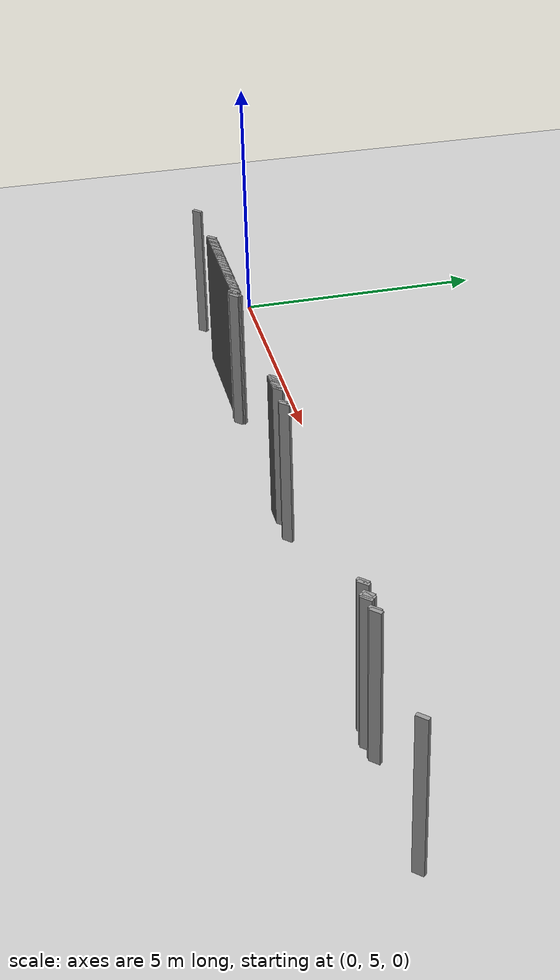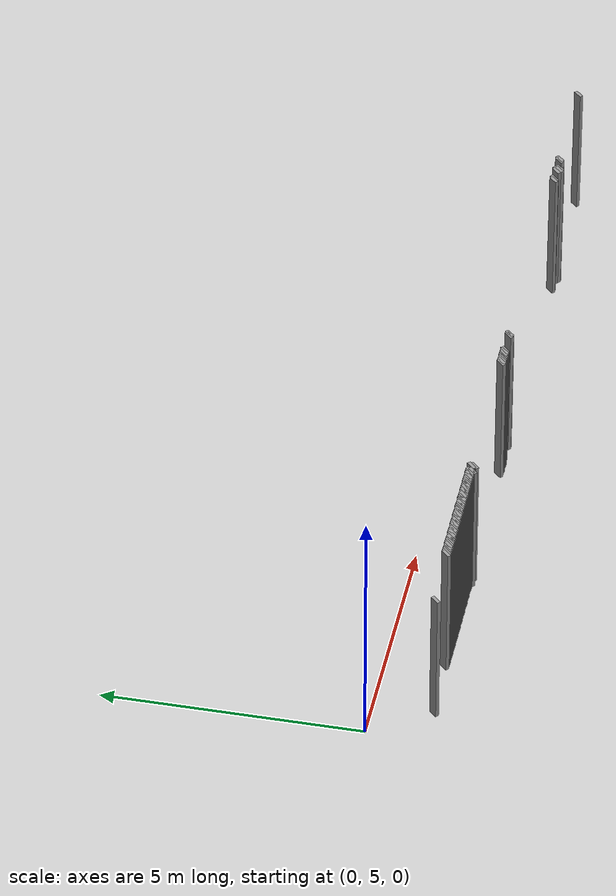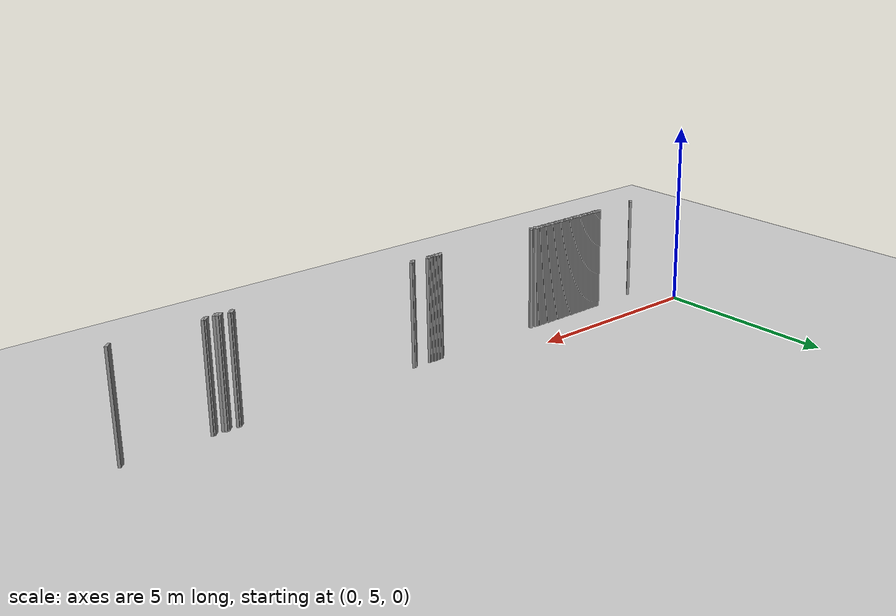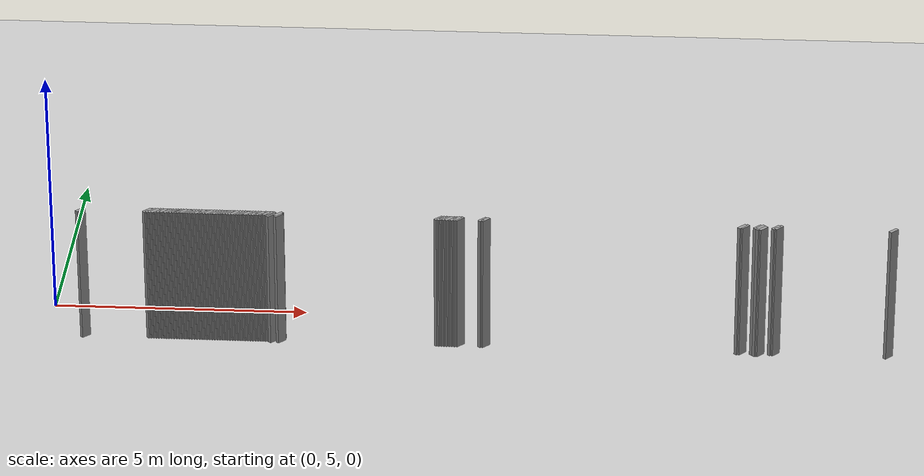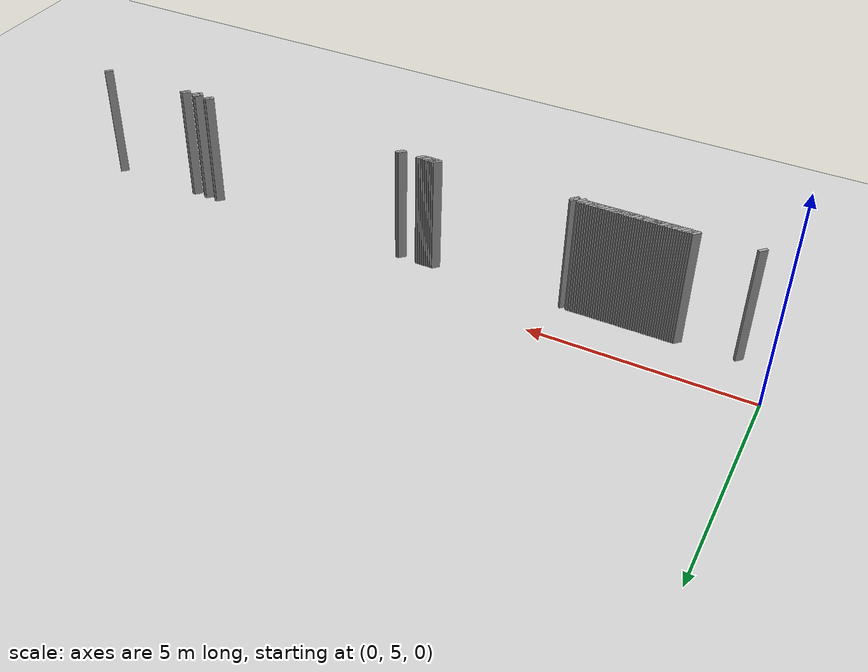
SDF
<sdf version="1.5">
 <world name="default">
  <include><uri>model://ground_plane</uri></include>
  <include><uri>model://sun</uri></include>
  <model name="grey_wall_2221">
   <static>1</static>
   <link name="link">
    <pose>2.0500000000000003 3.9000000000000004  1.4 0 0 -0.7853981633974483</pose>
    <collision name="collision">
     <geometry><box><size>0.0707106781186545 .2  2.8</size></box></geometry>
    </collision>
    <visual name="visual">
     <cast_shadows>0</cast_shadows>
     <geometry><box><size>0.0707106781186545 .2  2.8</size></box></geometry>
     <material>
      <script>
       <uri>model://grey_wall/materials/scripts</uri>
       <uri>model://grey_wall/materials/textures</uri>
       <name>vrc/grey_wall</name>
      </script>
     </material>
    </visual>
   </link>
  </model>
  <model name="grey_wall_2222">
   <static>1</static>
   <link name="link">
    <pose>2.1 3.9000000000000004  1.4 0 0 -0.7853981633974483</pose>
    <collision name="collision">
     <geometry><box><size>0.0707106781186545 .2  2.8</size></box></geometry>
    </collision>
    <visual name="visual">
     <cast_shadows>0</cast_shadows>
     <geometry><box><size>0.0707106781186545 .2  2.8</size></box></geometry>
     <material>
      <script>
       <uri>model://grey_wall/materials/scripts</uri>
       <uri>model://grey_wall/materials/textures</uri>
       <name>vrc/grey_wall</name>
      </script>
     </material>
    </visual>
   </link>
  </model>
  <model name="grey_wall_2223">
   <static>1</static>
   <link name="link">
    <pose>2.15 3.9000000000000004  1.4 0 0 -0.7853981633974483</pose>
    <collision name="collision">
     <geometry><box><size>0.0707106781186545 .2  2.8</size></box></geometry>
    </collision>
    <visual name="visual">
     <cast_shadows>0</cast_shadows>
     <geometry><box><size>0.0707106781186545 .2  2.8</size></box></geometry>
     <material>
      <script>
       <uri>model://grey_wall/materials/scripts</uri>
       <uri>model://grey_wall/materials/textures</uri>
       <name>vrc/grey_wall</name>
      </script>
     </material>
    </visual>
   </link>
  </model>
  <model name="grey_wall_2224">
   <static>1</static>
   <link name="link">
    <pose>2.2 3.9000000000000004  1.4 0 0 -0.7853981633974483</pose>
    <collision name="collision">
     <geometry><box><size>0.0707106781186545 .2  2.8</size></box></geometry>
    </collision>
    <visual name="visual">
     <cast_shadows>0</cast_shadows>
     <geometry><box><size>0.0707106781186545 .2  2.8</size></box></geometry>
     <material>
      <script>
       <uri>model://grey_wall/materials/scripts</uri>
       <uri>model://grey_wall/materials/textures</uri>
       <name>vrc/grey_wall</name>
      </script>
     </material>
    </visual>
   </link>
  </model>
  <model name="grey_wall_2225">
   <static>1</static>
   <link name="link">
    <pose>2.25 3.9000000000000004  1.4 0 0 -0.7853981633974483</pose>
    <collision name="collision">
     <geometry><box><size>0.0707106781186545 .2  2.8</size></box></geometry>
    </collision>
    <visual name="visual">
     <cast_shadows>0</cast_shadows>
     <geometry><box><size>0.0707106781186545 .2  2.8</size></box></geometry>
     <material>
      <script>
       <uri>model://grey_wall/materials/scripts</uri>
       <uri>model://grey_wall/materials/textures</uri>
       <name>vrc/grey_wall</name>
      </script>
     </material>
    </visual>
   </link>
  </model>
  <model name="grey_wall_2226">
   <static>1</static>
   <link name="link">
    <pose>2.3000000000000003 3.9000000000000004  1.4 0 0 -0.7853981633974483</pose>
    <collision name="collision">
     <geometry><box><size>0.0707106781186545 .2  2.8</size></box></geometry>
    </collision>
    <visual name="visual">
     <cast_shadows>0</cast_shadows>
     <geometry><box><size>0.0707106781186545 .2  2.8</size></box></geometry>
     <material>
      <script>
       <uri>model://grey_wall/materials/scripts</uri>
       <uri>model://grey_wall/materials/textures</uri>
       <name>vrc/grey_wall</name>
      </script>
     </material>
    </visual>
   </link>
  </model>
  <model name="grey_wall_2227">
   <static>1</static>
   <link name="link">
    <pose>2.35 3.9000000000000004  1.4 0 0 -0.7853981633974483</pose>
    <collision name="collision">
     <geometry><box><size>0.0707106781186545 .2  2.8</size></box></geometry>
    </collision>
    <visual name="visual">
     <cast_shadows>0</cast_shadows>
     <geometry><box><size>0.0707106781186545 .2  2.8</size></box></geometry>
     <material>
      <script>
       <uri>model://grey_wall/materials/scripts</uri>
       <uri>model://grey_wall/materials/textures</uri>
       <name>vrc/grey_wall</name>
      </script>
     </material>
    </visual>
   </link>
  </model>
  <model name="grey_wall_2228">
   <static>1</static>
   <link name="link">
    <pose>2.4000000000000004 3.9000000000000004  1.4 0 0 -0.7853981633974483</pose>
    <collision name="collision">
     <geometry><box><size>0.0707106781186545 .2  2.8</size></box></geometry>
    </collision>
    <visual name="visual">
     <cast_shadows>0</cast_shadows>
     <geometry><box><size>0.0707106781186545 .2  2.8</size></box></geometry>
     <material>
      <script>
       <uri>model://grey_wall/materials/scripts</uri>
       <uri>model://grey_wall/materials/textures</uri>
       <name>vrc/grey_wall</name>
      </script>
     </material>
    </visual>
   </link>
  </model>
  <model name="grey_wall_2229">
   <static>1</static>
   <link name="link">
    <pose>2.45 3.9000000000000004  1.4 0 0 -0.7853981633974483</pose>
    <collision name="collision">
     <geometry><box><size>0.0707106781186545 .2  2.8</size></box></geometry>
    </collision>
    <visual name="visual">
     <cast_shadows>0</cast_shadows>
     <geometry><box><size>0.0707106781186545 .2  2.8</size></box></geometry>
     <material>
      <script>
       <uri>model://grey_wall/materials/scripts</uri>
       <uri>model://grey_wall/materials/textures</uri>
       <name>vrc/grey_wall</name>
      </script>
     </material>
    </visual>
   </link>
  </model>
  <model name="grey_wall_2230">
   <static>1</static>
   <link name="link">
    <pose>2.5 3.9000000000000004  1.4 0 0 -0.7853981633974483</pose>
    <collision name="collision">
     <geometry><box><size>0.0707106781186545 .2  2.8</size></box></geometry>
    </collision>
    <visual name="visual">
     <cast_shadows>0</cast_shadows>
     <geometry><box><size>0.0707106781186545 .2  2.8</size></box></geometry>
     <material>
      <script>
       <uri>model://grey_wall/materials/scripts</uri>
       <uri>model://grey_wall/materials/textures</uri>
       <name>vrc/grey_wall</name>
      </script>
     </material>
    </visual>
   </link>
  </model>
  <model name="grey_wall_2231">
   <static>1</static>
   <link name="link">
    <pose>2.5500000000000003 3.9000000000000004  1.4 0 0 -0.7853981633974483</pose>
    <collision name="collision">
     <geometry><box><size>0.0707106781186545 .2  2.8</size></box></geometry>
    </collision>
    <visual name="visual">
     <cast_shadows>0</cast_shadows>
     <geometry><box><size>0.0707106781186545 .2  2.8</size></box></geometry>
     <material>
      <script>
       <uri>model://grey_wall/materials/scripts</uri>
       <uri>model://grey_wall/materials/textures</uri>
       <name>vrc/grey_wall</name>
      </script>
     </material>
    </visual>
   </link>
  </model>
  <model name="grey_wall_2232">
   <static>1</static>
   <link name="link">
    <pose>2.6 3.9000000000000004  1.4 0 0 -0.7853981633974483</pose>
    <collision name="collision">
     <geometry><box><size>0.0707106781186545 .2  2.8</size></box></geometry>
    </collision>
    <visual name="visual">
     <cast_shadows>0</cast_shadows>
     <geometry><box><size>0.0707106781186545 .2  2.8</size></box></geometry>
     <material>
      <script>
       <uri>model://grey_wall/materials/scripts</uri>
       <uri>model://grey_wall/materials/textures</uri>
       <name>vrc/grey_wall</name>
      </script>
     </material>
    </visual>
   </link>
  </model>
  <model name="grey_wall_2233">
   <static>1</static>
   <link name="link">
    <pose>2.6500000000000004 3.9000000000000004  1.4 0 0 -0.7853981633974483</pose>
    <collision name="collision">
     <geometry><box><size>0.0707106781186545 .2  2.8</size></box></geometry>
    </collision>
    <visual name="visual">
     <cast_shadows>0</cast_shadows>
     <geometry><box><size>0.0707106781186545 .2  2.8</size></box></geometry>
     <material>
      <script>
       <uri>model://grey_wall/materials/scripts</uri>
       <uri>model://grey_wall/materials/textures</uri>
       <name>vrc/grey_wall</name>
      </script>
     </material>
    </visual>
   </link>
  </model>
  <model name="grey_wall_2234">
   <static>1</static>
   <link name="link">
    <pose>2.7 3.9000000000000004  1.4 0 0 -0.7853981633974483</pose>
    <collision name="collision">
     <geometry><box><size>0.0707106781186545 .2  2.8</size></box></geometry>
    </collision>
    <visual name="visual">
     <cast_shadows>0</cast_shadows>
     <geometry><box><size>0.0707106781186545 .2  2.8</size></box></geometry>
     <material>
      <script>
       <uri>model://grey_wall/materials/scripts</uri>
       <uri>model://grey_wall/materials/textures</uri>
       <name>vrc/grey_wall</name>
      </script>
     </material>
    </visual>
   </link>
  </model>
  <model name="grey_wall_2235">
   <static>1</static>
   <link name="link">
    <pose>2.75 3.9000000000000004  1.4 0 0 -0.7853981633974483</pose>
    <collision name="collision">
     <geometry><box><size>0.0707106781186545 .2  2.8</size></box></geometry>
    </collision>
    <visual name="visual">
     <cast_shadows>0</cast_shadows>
     <geometry><box><size>0.0707106781186545 .2  2.8</size></box></geometry>
     <material>
      <script>
       <uri>model://grey_wall/materials/scripts</uri>
       <uri>model://grey_wall/materials/textures</uri>
       <name>vrc/grey_wall</name>
      </script>
     </material>
    </visual>
   </link>
  </model>
  <model name="grey_wall_2236">
   <static>1</static>
   <link name="link">
    <pose>2.8000000000000003 3.9000000000000004  1.4 0 0 -0.7853981633974483</pose>
    <collision name="collision">
     <geometry><box><size>0.0707106781186545 .2  2.8</size></box></geometry>
    </collision>
    <visual name="visual">
     <cast_shadows>0</cast_shadows>
     <geometry><box><size>0.0707106781186545 .2  2.8</size></box></geometry>
     <material>
      <script>
       <uri>model://grey_wall/materials/scripts</uri>
       <uri>model://grey_wall/materials/textures</uri>
       <name>vrc/grey_wall</name>
      </script>
     </material>
    </visual>
   </link>
  </model>
  <model name="grey_wall_2237">
   <static>1</static>
   <link name="link">
    <pose>2.85 3.9000000000000004  1.4 0 0 -0.7853981633974483</pose>
    <collision name="collision">
     <geometry><box><size>0.0707106781186545 .2  2.8</size></box></geometry>
    </collision>
    <visual name="visual">
     <cast_shadows>0</cast_shadows>
     <geometry><box><size>0.0707106781186545 .2  2.8</size></box></geometry>
     <material>
      <script>
       <uri>model://grey_wall/materials/scripts</uri>
       <uri>model://grey_wall/materials/textures</uri>
       <name>vrc/grey_wall</name>
      </script>
     </material>
    </visual>
   </link>
  </model>
  <model name="grey_wall_2238">
   <static>1</static>
   <link name="link">
    <pose>2.9000000000000004 3.9000000000000004  1.4 0 0 -0.7853981633974483</pose>
    <collision name="collision">
     <geometry><box><size>0.0707106781186545 .2  2.8</size></box></geometry>
    </collision>
    <visual name="visual">
     <cast_shadows>0</cast_shadows>
     <geometry><box><size>0.0707106781186545 .2  2.8</size></box></geometry>
     <material>
      <script>
       <uri>model://grey_wall/materials/scripts</uri>
       <uri>model://grey_wall/materials/textures</uri>
       <name>vrc/grey_wall</name>
      </script>
     </material>
    </visual>
   </link>
  </model>
  <model name="grey_wall_2239">
   <static>1</static>
   <link name="link">
    <pose>2.95 3.9000000000000004  1.4 0 0 -0.7853981633974483</pose>
    <collision name="collision">
     <geometry><box><size>0.0707106781186545 .2  2.8</size></box></geometry>
    </collision>
    <visual name="visual">
     <cast_shadows>0</cast_shadows>
     <geometry><box><size>0.0707106781186545 .2  2.8</size></box></geometry>
     <material>
      <script>
       <uri>model://grey_wall/materials/scripts</uri>
       <uri>model://grey_wall/materials/textures</uri>
       <name>vrc/grey_wall</name>
      </script>
     </material>
    </visual>
   </link>
  </model>
  <model name="grey_wall_2240">
   <static>1</static>
   <link name="link">
    <pose>3.0 3.9000000000000004  1.4 0 0 -0.7853981633974483</pose>
    <collision name="collision">
     <geometry><box><size>0.0707106781186545 .2  2.8</size></box></geometry>
    </collision>
    <visual name="visual">
     <cast_shadows>0</cast_shadows>
     <geometry><box><size>0.0707106781186545 .2  2.8</size></box></geometry>
     <material>
      <script>
       <uri>model://grey_wall/materials/scripts</uri>
       <uri>model://grey_wall/materials/textures</uri>
       <name>vrc/grey_wall</name>
      </script>
     </material>
    </visual>
   </link>
  </model>
  <model name="grey_wall_2241">
   <static>1</static>
   <link name="link">
    <pose>3.0500000000000003 3.9000000000000004  1.4 0 0 -0.7853981633974483</pose>
    <collision name="collision">
     <geometry><box><size>0.0707106781186545 .2  2.8</size></box></geometry>
    </collision>
    <visual name="visual">
     <cast_shadows>0</cast_shadows>
     <geometry><box><size>0.0707106781186545 .2  2.8</size></box></geometry>
     <material>
      <script>
       <uri>model://grey_wall/materials/scripts</uri>
       <uri>model://grey_wall/materials/textures</uri>
       <name>vrc/grey_wall</name>
      </script>
     </material>
    </visual>
   </link>
  </model>
  <model name="grey_wall_2242">
   <static>1</static>
   <link name="link">
    <pose>3.1 3.9000000000000004  1.4 0 0 -0.7853981633974483</pose>
    <collision name="collision">
     <geometry><box><size>0.0707106781186545 .2  2.8</size></box></geometry>
    </collision>
    <visual name="visual">
     <cast_shadows>0</cast_shadows>
     <geometry><box><size>0.0707106781186545 .2  2.8</size></box></geometry>
     <material>
      <script>
       <uri>model://grey_wall/materials/scripts</uri>
       <uri>model://grey_wall/materials/textures</uri>
       <name>vrc/grey_wall</name>
      </script>
     </material>
    </visual>
   </link>
  </model>
  <model name="grey_wall_2243">
   <static>1</static>
   <link name="link">
    <pose>3.1500000000000004 3.9000000000000004  1.4 0 0 -0.7853981633974483</pose>
    <collision name="collision">
     <geometry><box><size>0.0707106781186545 .2  2.8</size></box></geometry>
    </collision>
    <visual name="visual">
     <cast_shadows>0</cast_shadows>
     <geometry><box><size>0.0707106781186545 .2  2.8</size></box></geometry>
     <material>
      <script>
       <uri>model://grey_wall/materials/scripts</uri>
       <uri>model://grey_wall/materials/textures</uri>
       <name>vrc/grey_wall</name>
      </script>
     </material>
    </visual>
   </link>
  </model>
  <model name="grey_wall_2244">
   <static>1</static>
   <link name="link">
    <pose>3.2 3.9000000000000004  1.4 0 0 -0.7853981633974483</pose>
    <collision name="collision">
     <geometry><box><size>0.0707106781186545 .2  2.8</size></box></geometry>
    </collision>
    <visual name="visual">
     <cast_shadows>0</cast_shadows>
     <geometry><box><size>0.0707106781186545 .2  2.8</size></box></geometry>
     <material>
      <script>
       <uri>model://grey_wall/materials/scripts</uri>
       <uri>model://grey_wall/materials/textures</uri>
       <name>vrc/grey_wall</name>
      </script>
     </material>
    </visual>
   </link>
  </model>
  <model name="grey_wall_2245">
   <static>1</static>
   <link name="link">
    <pose>3.25 3.9000000000000004  1.4 0 0 -0.7853981633974483</pose>
    <collision name="collision">
     <geometry><box><size>0.0707106781186545 .2  2.8</size></box></geometry>
    </collision>
    <visual name="visual">
     <cast_shadows>0</cast_shadows>
     <geometry><box><size>0.0707106781186545 .2  2.8</size></box></geometry>
     <material>
      <script>
       <uri>model://grey_wall/materials/scripts</uri>
       <uri>model://grey_wall/materials/textures</uri>
       <name>vrc/grey_wall</name>
      </script>
     </material>
    </visual>
   </link>
  </model>
  <model name="grey_wall_2246">
   <static>1</static>
   <link name="link">
    <pose>3.3000000000000003 3.9000000000000004  1.4 0 0 -0.7853981633974483</pose>
    <collision name="collision">
     <geometry><box><size>0.0707106781186545 .2  2.8</size></box></geometry>
    </collision>
    <visual name="visual">
     <cast_shadows>0</cast_shadows>
     <geometry><box><size>0.0707106781186545 .2  2.8</size></box></geometry>
     <material>
      <script>
       <uri>model://grey_wall/materials/scripts</uri>
       <uri>model://grey_wall/materials/textures</uri>
       <name>vrc/grey_wall</name>
      </script>
     </material>
    </visual>
   </link>
  </model>
  <model name="grey_wall_2247">
   <static>1</static>
   <link name="link">
    <pose>3.35 3.9000000000000004  1.4 0 0 -0.7853981633974483</pose>
    <collision name="collision">
     <geometry><box><size>0.0707106781186545 .2  2.8</size></box></geometry>
    </collision>
    <visual name="visual">
     <cast_shadows>0</cast_shadows>
     <geometry><box><size>0.0707106781186545 .2  2.8</size></box></geometry>
     <material>
      <script>
       <uri>model://grey_wall/materials/scripts</uri>
       <uri>model://grey_wall/materials/textures</uri>
       <name>vrc/grey_wall</name>
      </script>
     </material>
    </visual>
   </link>
  </model>
  <model name="grey_wall_2248">
   <static>1</static>
   <link name="link">
    <pose>3.4000000000000004 3.9000000000000004  1.4 0 0 -0.7853981633974483</pose>
    <collision name="collision">
     <geometry><box><size>0.0707106781186545 .2  2.8</size></box></geometry>
    </collision>
    <visual name="visual">
     <cast_shadows>0</cast_shadows>
     <geometry><box><size>0.0707106781186545 .2  2.8</size></box></geometry>
     <material>
      <script>
       <uri>model://grey_wall/materials/scripts</uri>
       <uri>model://grey_wall/materials/textures</uri>
       <name>vrc/grey_wall</name>
      </script>
     </material>
    </visual>
   </link>
  </model>
  <model name="grey_wall_2249">
   <static>1</static>
   <link name="link">
    <pose>3.45 3.9000000000000004  1.4 0 0 -0.7853981633974483</pose>
    <collision name="collision">
     <geometry><box><size>0.0707106781186545 .2  2.8</size></box></geometry>
    </collision>
    <visual name="visual">
     <cast_shadows>0</cast_shadows>
     <geometry><box><size>0.0707106781186545 .2  2.8</size></box></geometry>
     <material>
      <script>
       <uri>model://grey_wall/materials/scripts</uri>
       <uri>model://grey_wall/materials/textures</uri>
       <name>vrc/grey_wall</name>
      </script>
     </material>
    </visual>
   </link>
  </model>
  <model name="grey_wall_2250">
   <static>1</static>
   <link name="link">
    <pose>3.5 3.9000000000000004  1.4 0 0 -0.7853981633974483</pose>
    <collision name="collision">
     <geometry><box><size>0.0707106781186545 .2  2.8</size></box></geometry>
    </collision>
    <visual name="visual">
     <cast_shadows>0</cast_shadows>
     <geometry><box><size>0.0707106781186545 .2  2.8</size></box></geometry>
     <material>
      <script>
       <uri>model://grey_wall/materials/scripts</uri>
       <uri>model://grey_wall/materials/textures</uri>
       <name>vrc/grey_wall</name>
      </script>
     </material>
    </visual>
   </link>
  </model>
  <model name="grey_wall_2251">
   <static>1</static>
   <link name="link">
    <pose>3.5500000000000003 3.9000000000000004  1.4 0 0 -0.7853981633974483</pose>
    <collision name="collision">
     <geometry><box><size>0.0707106781186545 .2  2.8</size></box></geometry>
    </collision>
    <visual name="visual">
     <cast_shadows>0</cast_shadows>
     <geometry><box><size>0.0707106781186545 .2  2.8</size></box></geometry>
     <material>
      <script>
       <uri>model://grey_wall/materials/scripts</uri>
       <uri>model://grey_wall/materials/textures</uri>
       <name>vrc/grey_wall</name>
      </script>
     </material>
    </visual>
   </link>
  </model>
  <model name="grey_wall_2252">
   <static>1</static>
   <link name="link">
    <pose>3.6 3.9000000000000004  1.4 0 0 -0.7853981633974483</pose>
    <collision name="collision">
     <geometry><box><size>0.0707106781186545 .2  2.8</size></box></geometry>
    </collision>
    <visual name="visual">
     <cast_shadows>0</cast_shadows>
     <geometry><box><size>0.0707106781186545 .2  2.8</size></box></geometry>
     <material>
      <script>
       <uri>model://grey_wall/materials/scripts</uri>
       <uri>model://grey_wall/materials/textures</uri>
       <name>vrc/grey_wall</name>
      </script>
     </material>
    </visual>
   </link>
  </model>
  <model name="grey_wall_2253">
   <static>1</static>
   <link name="link">
    <pose>3.6500000000000004 3.9000000000000004  1.4 0 0 -0.7853981633974483</pose>
    <collision name="collision">
     <geometry><box><size>0.0707106781186545 .2  2.8</size></box></geometry>
    </collision>
    <visual name="visual">
     <cast_shadows>0</cast_shadows>
     <geometry><box><size>0.0707106781186545 .2  2.8</size></box></geometry>
     <material>
      <script>
       <uri>model://grey_wall/materials/scripts</uri>
       <uri>model://grey_wall/materials/textures</uri>
       <name>vrc/grey_wall</name>
      </script>
     </material>
    </visual>
   </link>
  </model>
  <model name="grey_wall_2254">
   <static>1</static>
   <link name="link">
    <pose>3.7 3.9000000000000004  1.4 0 0 -0.7853981633974483</pose>
    <collision name="collision">
     <geometry><box><size>0.0707106781186545 .2  2.8</size></box></geometry>
    </collision>
    <visual name="visual">
     <cast_shadows>0</cast_shadows>
     <geometry><box><size>0.0707106781186545 .2  2.8</size></box></geometry>
     <material>
      <script>
       <uri>model://grey_wall/materials/scripts</uri>
       <uri>model://grey_wall/materials/textures</uri>
       <name>vrc/grey_wall</name>
      </script>
     </material>
    </visual>
   </link>
  </model>
  <model name="grey_wall_2255">
   <static>1</static>
   <link name="link">
    <pose>3.75 3.9000000000000004  1.4 0 0 -0.7853981633974483</pose>
    <collision name="collision">
     <geometry><box><size>0.0707106781186545 .2  2.8</size></box></geometry>
    </collision>
    <visual name="visual">
     <cast_shadows>0</cast_shadows>
     <geometry><box><size>0.0707106781186545 .2  2.8</size></box></geometry>
     <material>
      <script>
       <uri>model://grey_wall/materials/scripts</uri>
       <uri>model://grey_wall/materials/textures</uri>
       <name>vrc/grey_wall</name>
      </script>
     </material>
    </visual>
   </link>
  </model>
  <model name="grey_wall_2256">
   <static>1</static>
   <link name="link">
    <pose>3.8000000000000003 3.9000000000000004  1.4 0 0 -0.7853981633974483</pose>
    <collision name="collision">
     <geometry><box><size>0.0707106781186545 .2  2.8</size></box></geometry>
    </collision>
    <visual name="visual">
     <cast_shadows>0</cast_shadows>
     <geometry><box><size>0.0707106781186545 .2  2.8</size></box></geometry>
     <material>
      <script>
       <uri>model://grey_wall/materials/scripts</uri>
       <uri>model://grey_wall/materials/textures</uri>
       <name>vrc/grey_wall</name>
      </script>
     </material>
    </visual>
   </link>
  </model>
  <model name="grey_wall_2257">
   <static>1</static>
   <link name="link">
    <pose>3.85 3.9000000000000004  1.4 0 0 -0.7853981633974483</pose>
    <collision name="collision">
     <geometry><box><size>0.0707106781186545 .2  2.8</size></box></geometry>
    </collision>
    <visual name="visual">
     <cast_shadows>0</cast_shadows>
     <geometry><box><size>0.0707106781186545 .2  2.8</size></box></geometry>
     <material>
      <script>
       <uri>model://grey_wall/materials/scripts</uri>
       <uri>model://grey_wall/materials/textures</uri>
       <name>vrc/grey_wall</name>
      </script>
     </material>
    </visual>
   </link>
  </model>
  <model name="grey_wall_2258">
   <static>1</static>
   <link name="link">
    <pose>3.9000000000000004 3.9000000000000004  1.4 0 0 -0.7853981633974483</pose>
    <collision name="collision">
     <geometry><box><size>0.0707106781186545 .2  2.8</size></box></geometry>
    </collision>
    <visual name="visual">
     <cast_shadows>0</cast_shadows>
     <geometry><box><size>0.0707106781186545 .2  2.8</size></box></geometry>
     <material>
      <script>
       <uri>model://grey_wall/materials/scripts</uri>
       <uri>model://grey_wall/materials/textures</uri>
       <name>vrc/grey_wall</name>
      </script>
     </material>
    </visual>
   </link>
  </model>
  <model name="grey_wall_2259">
   <static>1</static>
   <link name="link">
    <pose>3.95 3.9000000000000004  1.4 0 0 -0.7853981633974483</pose>
    <collision name="collision">
     <geometry><box><size>0.0707106781186545 .2  2.8</size></box></geometry>
    </collision>
    <visual name="visual">
     <cast_shadows>0</cast_shadows>
     <geometry><box><size>0.0707106781186545 .2  2.8</size></box></geometry>
     <material>
      <script>
       <uri>model://grey_wall/materials/scripts</uri>
       <uri>model://grey_wall/materials/textures</uri>
       <name>vrc/grey_wall</name>
      </script>
     </material>
    </visual>
   </link>
  </model>
  <model name="grey_wall_2260">
   <static>1</static>
   <link name="link">
    <pose>4.0 3.9000000000000004  1.4 0 0 -0.7853981633974438</pose>
    <collision name="collision">
     <geometry><box><size>0.07071067811865482 .2  2.8</size></box></geometry>
    </collision>
    <visual name="visual">
     <cast_shadows>0</cast_shadows>
     <geometry><box><size>0.07071067811865482 .2  2.8</size></box></geometry>
     <material>
      <script>
       <uri>model://grey_wall/materials/scripts</uri>
       <uri>model://grey_wall/materials/textures</uri>
       <name>vrc/grey_wall</name>
      </script>
     </material>
    </visual>
   </link>
  </model>
  <model name="grey_wall_2261">
   <static>1</static>
   <link name="link">
    <pose>4.05 3.9000000000000004  1.4 0 0 -0.7853981633974394</pose>
    <collision name="collision">
     <geometry><box><size>0.07071067811865513 .2  2.8</size></box></geometry>
    </collision>
    <visual name="visual">
     <cast_shadows>0</cast_shadows>
     <geometry><box><size>0.07071067811865513 .2  2.8</size></box></geometry>
     <material>
      <script>
       <uri>model://grey_wall/materials/scripts</uri>
       <uri>model://grey_wall/materials/textures</uri>
       <name>vrc/grey_wall</name>
      </script>
     </material>
    </visual>
   </link>
  </model>
  <model name="grey_wall_2262">
   <static>1</static>
   <link name="link">
    <pose>4.1000000000000005 3.9000000000000004  1.4 0 0 -0.7853981633974394</pose>
    <collision name="collision">
     <geometry><box><size>0.07071067811865513 .2  2.8</size></box></geometry>
    </collision>
    <visual name="visual">
     <cast_shadows>0</cast_shadows>
     <geometry><box><size>0.07071067811865513 .2  2.8</size></box></geometry>
     <material>
      <script>
       <uri>model://grey_wall/materials/scripts</uri>
       <uri>model://grey_wall/materials/textures</uri>
       <name>vrc/grey_wall</name>
      </script>
     </material>
    </visual>
   </link>
  </model>
  <model name="grey_wall_2263">
   <static>1</static>
   <link name="link">
    <pose>4.15 3.9000000000000004  1.4 0 0 -0.7853981633974394</pose>
    <collision name="collision">
     <geometry><box><size>0.07071067811865513 .2  2.8</size></box></geometry>
    </collision>
    <visual name="visual">
     <cast_shadows>0</cast_shadows>
     <geometry><box><size>0.07071067811865513 .2  2.8</size></box></geometry>
     <material>
      <script>
       <uri>model://grey_wall/materials/scripts</uri>
       <uri>model://grey_wall/materials/textures</uri>
       <name>vrc/grey_wall</name>
      </script>
     </material>
    </visual>
   </link>
  </model>
  <model name="grey_wall_2264">
   <static>1</static>
   <link name="link">
    <pose>4.2 3.9000000000000004  1.4 0 0 -0.7853981633974394</pose>
    <collision name="collision">
     <geometry><box><size>0.07071067811865513 .2  2.8</size></box></geometry>
    </collision>
    <visual name="visual">
     <cast_shadows>0</cast_shadows>
     <geometry><box><size>0.07071067811865513 .2  2.8</size></box></geometry>
     <material>
      <script>
       <uri>model://grey_wall/materials/scripts</uri>
       <uri>model://grey_wall/materials/textures</uri>
       <name>vrc/grey_wall</name>
      </script>
     </material>
    </visual>
   </link>
  </model>
  <model name="grey_wall_2265">
   <static>1</static>
   <link name="link">
    <pose>4.25 3.9000000000000004  1.4 0 0 -0.7853981633974394</pose>
    <collision name="collision">
     <geometry><box><size>0.07071067811865513 .2  2.8</size></box></geometry>
    </collision>
    <visual name="visual">
     <cast_shadows>0</cast_shadows>
     <geometry><box><size>0.07071067811865513 .2  2.8</size></box></geometry>
     <material>
      <script>
       <uri>model://grey_wall/materials/scripts</uri>
       <uri>model://grey_wall/materials/textures</uri>
       <name>vrc/grey_wall</name>
      </script>
     </material>
    </visual>
   </link>
  </model>
  <model name="grey_wall_2266">
   <static>1</static>
   <link name="link">
    <pose>4.3 3.9000000000000004  1.4 0 0 -0.7853981633974394</pose>
    <collision name="collision">
     <geometry><box><size>0.07071067811865513 .2  2.8</size></box></geometry>
    </collision>
    <visual name="visual">
     <cast_shadows>0</cast_shadows>
     <geometry><box><size>0.07071067811865513 .2  2.8</size></box></geometry>
     <material>
      <script>
       <uri>model://grey_wall/materials/scripts</uri>
       <uri>model://grey_wall/materials/textures</uri>
       <name>vrc/grey_wall</name>
      </script>
     </material>
    </visual>
   </link>
  </model>
  <model name="grey_wall_2267">
   <static>1</static>
   <link name="link">
    <pose>4.3500000000000005 3.9000000000000004  1.4 0 0 -0.7853981633974394</pose>
    <collision name="collision">
     <geometry><box><size>0.07071067811865513 .2  2.8</size></box></geometry>
    </collision>
    <visual name="visual">
     <cast_shadows>0</cast_shadows>
     <geometry><box><size>0.07071067811865513 .2  2.8</size></box></geometry>
     <material>
      <script>
       <uri>model://grey_wall/materials/scripts</uri>
       <uri>model://grey_wall/materials/textures</uri>
       <name>vrc/grey_wall</name>
      </script>
     </material>
    </visual>
   </link>
  </model>
  <model name="grey_wall_2268">
   <static>1</static>
   <link name="link">
    <pose>4.4 3.9000000000000004  1.4 0 0 -0.7853981633974394</pose>
    <collision name="collision">
     <geometry><box><size>0.07071067811865513 .2  2.8</size></box></geometry>
    </collision>
    <visual name="visual">
     <cast_shadows>0</cast_shadows>
     <geometry><box><size>0.07071067811865513 .2  2.8</size></box></geometry>
     <material>
      <script>
       <uri>model://grey_wall/materials/scripts</uri>
       <uri>model://grey_wall/materials/textures</uri>
       <name>vrc/grey_wall</name>
      </script>
     </material>
    </visual>
   </link>
  </model>
  <model name="grey_wall_2269">
   <static>1</static>
   <link name="link">
    <pose>4.45 3.9000000000000004  1.4 0 0 -0.7853981633974394</pose>
    <collision name="collision">
     <geometry><box><size>0.07071067811865513 .2  2.8</size></box></geometry>
    </collision>
    <visual name="visual">
     <cast_shadows>0</cast_shadows>
     <geometry><box><size>0.07071067811865513 .2  2.8</size></box></geometry>
     <material>
      <script>
       <uri>model://grey_wall/materials/scripts</uri>
       <uri>model://grey_wall/materials/textures</uri>
       <name>vrc/grey_wall</name>
      </script>
     </material>
    </visual>
   </link>
  </model>
  <model name="grey_wall_2270">
   <static>1</static>
   <link name="link">
    <pose>4.6000000000000005 3.9000000000000004  1.4 0 0 -0.7853981633974394</pose>
    <collision name="collision">
     <geometry><box><size>0.07071067811865513 .2  2.8</size></box></geometry>
    </collision>
    <visual name="visual">
     <cast_shadows>0</cast_shadows>
     <geometry><box><size>0.07071067811865513 .2  2.8</size></box></geometry>
     <material>
      <script>
       <uri>model://grey_wall/materials/scripts</uri>
       <uri>model://grey_wall/materials/textures</uri>
       <name>vrc/grey_wall</name>
      </script>
     </material>
    </visual>
   </link>
  </model>
  <model name="grey_wall_2271">
   <static>1</static>
   <link name="link">
    <pose>7.7 3.9000000000000004  1.4 0 0 -0.7853981633974394</pose>
    <collision name="collision">
     <geometry><box><size>0.07071067811865513 .2  2.8</size></box></geometry>
    </collision>
    <visual name="visual">
     <cast_shadows>0</cast_shadows>
     <geometry><box><size>0.07071067811865513 .2  2.8</size></box></geometry>
     <material>
      <script>
       <uri>model://grey_wall/materials/scripts</uri>
       <uri>model://grey_wall/materials/textures</uri>
       <name>vrc/grey_wall</name>
      </script>
     </material>
    </visual>
   </link>
  </model>
  <model name="grey_wall_2272">
   <static>1</static>
   <link name="link">
    <pose>7.75 3.9000000000000004  1.4 0 0 -0.7853981633974394</pose>
    <collision name="collision">
     <geometry><box><size>0.07071067811865513 .2  2.8</size></box></geometry>
    </collision>
    <visual name="visual">
     <cast_shadows>0</cast_shadows>
     <geometry><box><size>0.07071067811865513 .2  2.8</size></box></geometry>
     <material>
      <script>
       <uri>model://grey_wall/materials/scripts</uri>
       <uri>model://grey_wall/materials/textures</uri>
       <name>vrc/grey_wall</name>
      </script>
     </material>
    </visual>
   </link>
  </model>
  <model name="grey_wall_2273">
   <static>1</static>
   <link name="link">
    <pose>7.800000000000001 3.9000000000000004  1.4 0 0 -0.7853981633974394</pose>
    <collision name="collision">
     <geometry><box><size>0.07071067811865513 .2  2.8</size></box></geometry>
    </collision>
    <visual name="visual">
     <cast_shadows>0</cast_shadows>
     <geometry><box><size>0.07071067811865513 .2  2.8</size></box></geometry>
     <material>
      <script>
       <uri>model://grey_wall/materials/scripts</uri>
       <uri>model://grey_wall/materials/textures</uri>
       <name>vrc/grey_wall</name>
      </script>
     </material>
    </visual>
   </link>
  </model>
  <model name="grey_wall_2274">
   <static>1</static>
   <link name="link">
    <pose>7.8500000000000005 3.9000000000000004  1.4 0 0 -0.7853981633974394</pose>
    <collision name="collision">
     <geometry><box><size>0.07071067811865513 .2  2.8</size></box></geometry>
    </collision>
    <visual name="visual">
     <cast_shadows>0</cast_shadows>
     <geometry><box><size>0.07071067811865513 .2  2.8</size></box></geometry>
     <material>
      <script>
       <uri>model://grey_wall/materials/scripts</uri>
       <uri>model://grey_wall/materials/textures</uri>
       <name>vrc/grey_wall</name>
      </script>
     </material>
    </visual>
   </link>
  </model>
  <model name="grey_wall_2275">
   <static>1</static>
   <link name="link">
    <pose>7.9 3.9000000000000004  1.4 0 0 -0.7853981633974394</pose>
    <collision name="collision">
     <geometry><box><size>0.07071067811865513 .2  2.8</size></box></geometry>
    </collision>
    <visual name="visual">
     <cast_shadows>0</cast_shadows>
     <geometry><box><size>0.07071067811865513 .2  2.8</size></box></geometry>
     <material>
      <script>
       <uri>model://grey_wall/materials/scripts</uri>
       <uri>model://grey_wall/materials/textures</uri>
       <name>vrc/grey_wall</name>
      </script>
     </material>
    </visual>
   </link>
  </model>
  <model name="grey_wall_2276">
   <static>1</static>
   <link name="link">
    <pose>7.95 3.9000000000000004  1.4 0 0 -0.7853981633974394</pose>
    <collision name="collision">
     <geometry><box><size>0.07071067811865513 .2  2.8</size></box></geometry>
    </collision>
    <visual name="visual">
     <cast_shadows>0</cast_shadows>
     <geometry><box><size>0.07071067811865513 .2  2.8</size></box></geometry>
     <material>
      <script>
       <uri>model://grey_wall/materials/scripts</uri>
       <uri>model://grey_wall/materials/textures</uri>
       <name>vrc/grey_wall</name>
      </script>
     </material>
    </visual>
   </link>
  </model>
  <model name="grey_wall_2277">
   <static>1</static>
   <link name="link">
    <pose>8.0 3.9000000000000004  1.4 0 0 -0.7853981633974394</pose>
    <collision name="collision">
     <geometry><box><size>0.07071067811865513 .2  2.8</size></box></geometry>
    </collision>
    <visual name="visual">
     <cast_shadows>0</cast_shadows>
     <geometry><box><size>0.07071067811865513 .2  2.8</size></box></geometry>
     <material>
      <script>
       <uri>model://grey_wall/materials/scripts</uri>
       <uri>model://grey_wall/materials/textures</uri>
       <name>vrc/grey_wall</name>
      </script>
     </material>
    </visual>
   </link>
  </model>
  <model name="grey_wall_2278">
   <static>1</static>
   <link name="link">
    <pose>8.05 3.9000000000000004  1.4 0 0 -0.7853981633974394</pose>
    <collision name="collision">
     <geometry><box><size>0.07071067811865513 .2  2.8</size></box></geometry>
    </collision>
    <visual name="visual">
     <cast_shadows>0</cast_shadows>
     <geometry><box><size>0.07071067811865513 .2  2.8</size></box></geometry>
     <material>
      <script>
       <uri>model://grey_wall/materials/scripts</uri>
       <uri>model://grey_wall/materials/textures</uri>
       <name>vrc/grey_wall</name>
      </script>
     </material>
    </visual>
   </link>
  </model>
  <model name="grey_wall_2279">
   <static>1</static>
   <link name="link">
    <pose>8.1 3.9000000000000004  1.4 0 0 -0.7853981633974394</pose>
    <collision name="collision">
     <geometry><box><size>0.07071067811865513 .2  2.8</size></box></geometry>
    </collision>
    <visual name="visual">
     <cast_shadows>0</cast_shadows>
     <geometry><box><size>0.07071067811865513 .2  2.8</size></box></geometry>
     <material>
      <script>
       <uri>model://grey_wall/materials/scripts</uri>
       <uri>model://grey_wall/materials/textures</uri>
       <name>vrc/grey_wall</name>
      </script>
     </material>
    </visual>
   </link>
  </model>
  <model name="grey_wall_2280">
   <static>1</static>
   <link name="link">
    <pose>8.55 3.9000000000000004  1.4 0 0 -0.7853981633974394</pose>
    <collision name="collision">
     <geometry><box><size>0.07071067811865513 .2  2.8</size></box></geometry>
    </collision>
    <visual name="visual">
     <cast_shadows>0</cast_shadows>
     <geometry><box><size>0.07071067811865513 .2  2.8</size></box></geometry>
     <material>
      <script>
       <uri>model://grey_wall/materials/scripts</uri>
       <uri>model://grey_wall/materials/textures</uri>
       <name>vrc/grey_wall</name>
      </script>
     </material>
    </visual>
   </link>
  </model>
  <model name="grey_wall_2281">
   <static>1</static>
   <link name="link">
    <pose>8.6 3.9000000000000004  1.4 0 0 -0.7853981633974394</pose>
    <collision name="collision">
     <geometry><box><size>0.07071067811865513 .2  2.8</size></box></geometry>
    </collision>
    <visual name="visual">
     <cast_shadows>0</cast_shadows>
     <geometry><box><size>0.07071067811865513 .2  2.8</size></box></geometry>
     <material>
      <script>
       <uri>model://grey_wall/materials/scripts</uri>
       <uri>model://grey_wall/materials/textures</uri>
       <name>vrc/grey_wall</name>
      </script>
     </material>
    </visual>
   </link>
  </model>
  <model name="grey_wall_2282">
   <static>1</static>
   <link name="link">
    <pose>13.55 3.9000000000000004  1.4 0 0 -0.7853981633974394</pose>
    <collision name="collision">
     <geometry><box><size>0.07071067811865513 .2  2.8</size></box></geometry>
    </collision>
    <visual name="visual">
     <cast_shadows>0</cast_shadows>
     <geometry><box><size>0.07071067811865513 .2  2.8</size></box></geometry>
     <material>
      <script>
       <uri>model://grey_wall/materials/scripts</uri>
       <uri>model://grey_wall/materials/textures</uri>
       <name>vrc/grey_wall</name>
      </script>
     </material>
    </visual>
   </link>
  </model>
  <model name="grey_wall_2283">
   <static>1</static>
   <link name="link">
    <pose>13.600000000000001 3.9000000000000004  1.4 0 0 -0.7853981633974394</pose>
    <collision name="collision">
     <geometry><box><size>0.07071067811865513 .2  2.8</size></box></geometry>
    </collision>
    <visual name="visual">
     <cast_shadows>0</cast_shadows>
     <geometry><box><size>0.07071067811865513 .2  2.8</size></box></geometry>
     <material>
      <script>
       <uri>model://grey_wall/materials/scripts</uri>
       <uri>model://grey_wall/materials/textures</uri>
       <name>vrc/grey_wall</name>
      </script>
     </material>
    </visual>
   </link>
  </model>
  <model name="grey_wall_2284">
   <static>1</static>
   <link name="link">
    <pose>13.850000000000001 3.9000000000000004  1.4 0 0 -0.7853981633974394</pose>
    <collision name="collision">
     <geometry><box><size>0.07071067811865513 .2  2.8</size></box></geometry>
    </collision>
    <visual name="visual">
     <cast_shadows>0</cast_shadows>
     <geometry><box><size>0.07071067811865513 .2  2.8</size></box></geometry>
     <material>
      <script>
       <uri>model://grey_wall/materials/scripts</uri>
       <uri>model://grey_wall/materials/textures</uri>
       <name>vrc/grey_wall</name>
      </script>
     </material>
    </visual>
   </link>
  </model>
  <model name="grey_wall_2285">
   <static>1</static>
   <link name="link">
    <pose>13.9 3.9000000000000004  1.4 0 0 -0.7853981633974394</pose>
    <collision name="collision">
     <geometry><box><size>0.07071067811865513 .2  2.8</size></box></geometry>
    </collision>
    <visual name="visual">
     <cast_shadows>0</cast_shadows>
     <geometry><box><size>0.07071067811865513 .2  2.8</size></box></geometry>
     <material>
      <script>
       <uri>model://grey_wall/materials/scripts</uri>
       <uri>model://grey_wall/materials/textures</uri>
       <name>vrc/grey_wall</name>
      </script>
     </material>
    </visual>
   </link>
  </model>
  <model name="grey_wall_2286">
   <static>1</static>
   <link name="link">
    <pose>14.200000000000001 3.9000000000000004  1.4 0 0 -0.7853981633974394</pose>
    <collision name="collision">
     <geometry><box><size>0.07071067811865513 .2  2.8</size></box></geometry>
    </collision>
    <visual name="visual">
     <cast_shadows>0</cast_shadows>
     <geometry><box><size>0.07071067811865513 .2  2.8</size></box></geometry>
     <material>
      <script>
       <uri>model://grey_wall/materials/scripts</uri>
       <uri>model://grey_wall/materials/textures</uri>
       <name>vrc/grey_wall</name>
      </script>
     </material>
    </visual>
   </link>
  </model>
  <model name="grey_wall_2287">
   <static>1</static>
   <link name="link">
    <pose>14.25 3.9000000000000004  1.4 0 0 -0.7853981633974394</pose>
    <collision name="collision">
     <geometry><box><size>0.07071067811865513 .2  2.8</size></box></geometry>
    </collision>
    <visual name="visual">
     <cast_shadows>0</cast_shadows>
     <geometry><box><size>0.07071067811865513 .2  2.8</size></box></geometry>
     <material>
      <script>
       <uri>model://grey_wall/materials/scripts</uri>
       <uri>model://grey_wall/materials/textures</uri>
       <name>vrc/grey_wall</name>
      </script>
     </material>
    </visual>
   </link>
  </model>
  <model name="grey_wall_2288">
   <static>1</static>
   <link name="link">
    <pose>16.45 3.9000000000000004  1.4 0 0 -0.7853981633974749</pose>
    <collision name="collision">
     <geometry><box><size>0.07071067811865261 .2  2.8</size></box></geometry>
    </collision>
    <visual name="visual">
     <cast_shadows>0</cast_shadows>
     <geometry><box><size>0.07071067811865261 .2  2.8</size></box></geometry>
     <material>
      <script>
       <uri>model://grey_wall/materials/scripts</uri>
       <uri>model://grey_wall/materials/textures</uri>
       <name>vrc/grey_wall</name>
      </script>
     </material>
    </visual>
   </link>
  </model>
  <model name="grey_wall_2289">
   <static>1</static>
   <link name="link">
    <pose>0.75 3.85  1.4 0 0 -0.7853981633974461</pose>
    <collision name="collision">
     <geometry><box><size>0.07071067811865465 .2  2.8</size></box></geometry>
    </collision>
    <visual name="visual">
     <cast_shadows>0</cast_shadows>
     <geometry><box><size>0.07071067811865465 .2  2.8</size></box></geometry>
     <material>
      <script>
       <uri>model://grey_wall/materials/scripts</uri>
       <uri>model://grey_wall/materials/textures</uri>
       <name>vrc/grey_wall</name>
      </script>
     </material>
    </visual>
   </link>
  </model>
  <model name="grey_wall_2290">
   <static>1</static>
   <link name="link">
    <pose>4.45 3.85  1.4 0 0 -0.7853981633974394</pose>
    <collision name="collision">
     <geometry><box><size>0.07071067811865513 .2  2.8</size></box></geometry>
    </collision>
    <visual name="visual">
     <cast_shadows>0</cast_shadows>
     <geometry><box><size>0.07071067811865513 .2  2.8</size></box></geometry>
     <material>
      <script>
       <uri>model://grey_wall/materials/scripts</uri>
       <uri>model://grey_wall/materials/textures</uri>
       <name>vrc/grey_wall</name>
      </script>
     </material>
    </visual>
   </link>
  </model>
  <model name="grey_wall_2291">
   <static>1</static>
   <link name="link">
    <pose>4.6000000000000005 3.85  1.4 0 0 -0.7853981633974394</pose>
    <collision name="collision">
     <geometry><box><size>0.07071067811865513 .2  2.8</size></box></geometry>
    </collision>
    <visual name="visual">
     <cast_shadows>0</cast_shadows>
     <geometry><box><size>0.07071067811865513 .2  2.8</size></box></geometry>
     <material>
      <script>
       <uri>model://grey_wall/materials/scripts</uri>
       <uri>model://grey_wall/materials/textures</uri>
       <name>vrc/grey_wall</name>
      </script>
     </material>
    </visual>
   </link>
  </model>
  <model name="grey_wall_2292">
   <static>1</static>
   <link name="link">
    <pose>13.9 3.85  1.4 0 0 -0.7853981633974394</pose>
    <collision name="collision">
     <geometry><box><size>0.07071067811865513 .2  2.8</size></box></geometry>
    </collision>
    <visual name="visual">
     <cast_shadows>0</cast_shadows>
     <geometry><box><size>0.07071067811865513 .2  2.8</size></box></geometry>
     <material>
      <script>
       <uri>model://grey_wall/materials/scripts</uri>
       <uri>model://grey_wall/materials/textures</uri>
       <name>vrc/grey_wall</name>
      </script>
     </material>
    </visual>
   </link>
  </model>
  <model name="grey_wall_2293">
   <static>1</static>
   <link name="link">
    <pose>13.950000000000001 3.85  1.4 0 0 -0.7853981633974394</pose>
    <collision name="collision">
     <geometry><box><size>0.07071067811865513 .2  2.8</size></box></geometry>
    </collision>
    <visual name="visual">
     <cast_shadows>0</cast_shadows>
     <geometry><box><size>0.07071067811865513 .2  2.8</size></box></geometry>
     <material>
      <script>
       <uri>model://grey_wall/materials/scripts</uri>
       <uri>model://grey_wall/materials/textures</uri>
       <name>vrc/grey_wall</name>
      </script>
     </material>
    </visual>
   </link>
  </model>
 </world>
</sdf>
